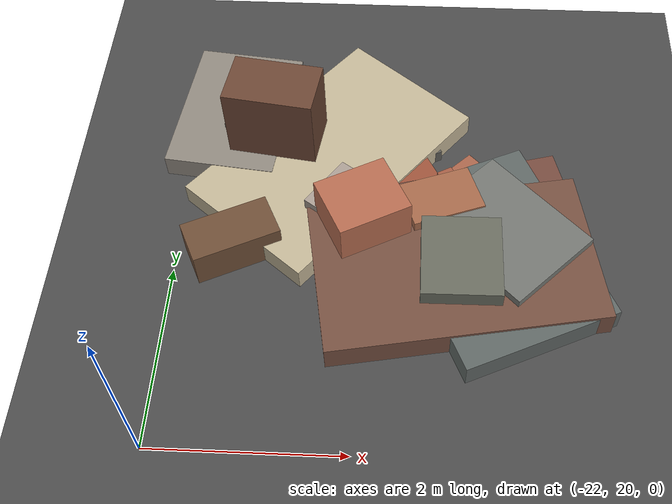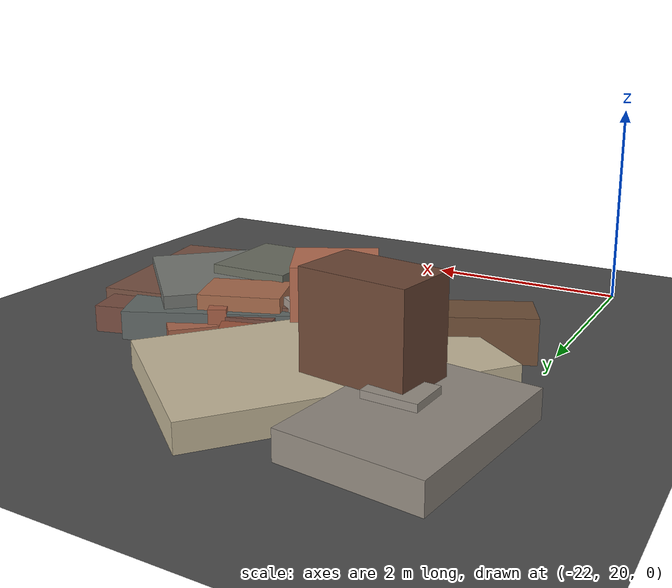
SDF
<sdf version="1.6">
 <world name="navitas_arena">
  <model name="ground_plane">
   <static>true</static>
   <link name="link">
    <collision name="collision">
     <geometry><plane><normal>0 0 1</normal><size>400 400</size></plane></geometry>
     <surface><friction><ode><mu>0.800</mu><mu2>0.800</mu2></ode></friction></surface>
    </collision>
    <visual name="visual">
     <cast_shadows>false</cast_shadows>
     <geometry><plane><normal>0 0 1</normal><size>400 400</size></plane></geometry>
     <material>
      <specular>0.04 0.04 0.04 1</specular>
      <script>
       <uri>file://media/materials/scripts/navitas_asphalt.material</uri>
       <name>Navitas/RealArenaAsphalt</name>
      </script>
     </material>
    </visual>
   </link>
  </model>
  <model name="deb_orta_62">
   <static>true</static>
   <pose>-21.143 23.354 0.000 0 0 0</pose>
   <link name="link">
    <collision name="col_0">
     <pose>0.542 0.536 0.078 0.000 0.000 2.634</pose>
     <geometry><box><size>1.936 0.295 0.155</size></box></geometry>
    </collision>
    <visual name="vis_0">
     <pose>0.542 0.536 0.078 0.000 0.000 2.634</pose>
     <geometry><box><size>1.936 0.295 0.155</size></box></geometry>
     <material>
      <ambient>0.62 0.35 0.23 1</ambient>
      <diffuse>0.67 0.38 0.25 1</diffuse>
      <specular>0.05 0.05 0.045 1</specular>
     </material>
    </visual>
    <collision name="col_1">
     <pose>-0.243 -1.070 0.216 0.000 0.000 2.020</pose>
     <geometry><box><size>0.486 0.949 0.431</size></box></geometry>
    </collision>
    <visual name="vis_1">
     <pose>-0.243 -1.070 0.216 0.000 0.000 2.020</pose>
     <geometry><box><size>0.486 0.949 0.431</size></box></geometry>
     <material>
      <ambient>0.41 0.29 0.21 1</ambient>
      <diffuse>0.44 0.31 0.22 1</diffuse>
      <specular>0.05 0.05 0.045 1</specular>
     </material>
    </visual>
    <collision name="col_2">
     <pose>0.719 0.157 0.128 0.000 0.000 0.895</pose>
     <geometry><box><size>2.849 1.729 0.255</size></box></geometry>
    </collision>
    <visual name="vis_2">
     <pose>0.719 0.157 0.128 0.000 0.000 0.895</pose>
     <geometry><box><size>2.849 1.729 0.255</size></box></geometry>
     <material>
      <ambient>0.71 0.67 0.56 1</ambient>
      <diffuse>0.77 0.72 0.60 1</diffuse>
      <specular>0.05 0.05 0.045 1</specular>
     </material>
    </visual>
    <collision name="col_3">
     <pose>-0.429 0.753 0.130 0.000 0.000 1.459</pose>
     <geometry><box><size>1.727 1.233 0.261</size></box></geometry>
    </collision>
    <visual name="vis_3">
     <pose>-0.429 0.753 0.130 0.000 0.000 1.459</pose>
     <geometry><box><size>1.727 1.233 0.261</size></box></geometry>
     <material>
      <ambient>0.53 0.50 0.46 1</ambient>
      <diffuse>0.57 0.54 0.50 1</diffuse>
      <specular>0.05 0.05 0.045 1</specular>
     </material>
    </visual>
   </link>
  </model>
  <model name="deb_orta_77">
   <static>true</static>
   <pose>-19.679 23.011 0.000 0 0 0</pose>
   <link name="link">
    <collision name="col_0">
     <pose>0.200 0.149 0.061 0.000 0.000 2.194</pose>
     <geometry><box><size>0.479 0.244 0.122</size></box></geometry>
    </collision>
    <visual name="vis_0">
     <pose>0.200 0.149 0.061 0.000 0.000 2.194</pose>
     <geometry><box><size>0.479 0.244 0.122</size></box></geometry>
     <material>
      <ambient>0.61 0.34 0.22 1</ambient>
      <diffuse>0.66 0.37 0.24 1</diffuse>
      <specular>0.05 0.05 0.045 1</specular>
     </material>
    </visual>
    <collision name="col_1">
     <pose>-0.087 -0.175 0.103 0.000 0.000 3.591</pose>
     <geometry><box><size>0.514 0.434 0.206</size></box></geometry>
    </collision>
    <visual name="vis_1">
     <pose>-0.087 -0.175 0.103 0.000 0.000 3.591</pose>
     <geometry><box><size>0.514 0.434 0.206</size></box></geometry>
     <material>
      <ambient>0.51 0.48 0.49 1</ambient>
      <diffuse>0.55 0.51 0.53 1</diffuse>
      <specular>0.05 0.05 0.045 1</specular>
     </material>
    </visual>
    <collision name="col_2">
     <pose>-0.435 -0.272 0.196 0.000 0.000 2.532</pose>
     <geometry><box><size>0.839 0.658 0.392</size></box></geometry>
    </collision>
    <visual name="vis_2">
     <pose>-0.435 -0.272 0.196 0.000 0.000 2.532</pose>
     <geometry><box><size>0.839 0.658 0.392</size></box></geometry>
     <material>
      <ambient>0.62 0.58 0.54 1</ambient>
      <diffuse>0.67 0.62 0.58 1</diffuse>
      <specular>0.05 0.05 0.045 1</specular>
     </material>
    </visual>
    <collision name="col_3">
     <pose>-0.300 -0.497 0.137 0.000 0.000 2.660</pose>
     <geometry><box><size>0.397 0.370 0.274</size></box></geometry>
    </collision>
    <visual name="vis_3">
     <pose>-0.300 -0.497 0.137 0.000 0.000 2.660</pose>
     <geometry><box><size>0.397 0.370 0.274</size></box></geometry>
     <material>
      <ambient>0.48 0.34 0.26 1</ambient>
      <diffuse>0.52 0.37 0.28 1</diffuse>
      <specular>0.05 0.05 0.045 1</specular>
     </material>
    </visual>
    <collision name="col_4">
     <pose>0.503 -0.203 0.213 0.000 0.000 3.493</pose>
     <geometry><box><size>0.797 0.549 0.427</size></box></geometry>
    </collision>
    <visual name="vis_4">
     <pose>0.503 -0.203 0.213 0.000 0.000 3.493</pose>
     <geometry><box><size>0.797 0.549 0.427</size></box></geometry>
     <material>
      <ambient>0.61 0.39 0.28 1</ambient>
      <diffuse>0.66 0.42 0.30 1</diffuse>
      <specular>0.05 0.05 0.045 1</specular>
     </material>
    </visual>
    <collision name="col_5">
     <pose>-0.327 -0.491 0.388 0.000 0.000 3.621</pose>
     <geometry><box><size>0.801 0.700 0.775</size></box></geometry>
    </collision>
    <visual name="vis_5">
     <pose>-0.327 -0.491 0.388 0.000 0.000 3.621</pose>
     <geometry><box><size>0.801 0.700 0.775</size></box></geometry>
     <material>
      <ambient>0.66 0.40 0.29 1</ambient>
      <diffuse>0.72 0.43 0.32 1</diffuse>
      <specular>0.05 0.05 0.045 1</specular>
     </material>
    </visual>
    <collision name="col_6">
     <pose>-0.064 0.104 0.111 0.000 0.000 2.069</pose>
     <geometry><box><size>2.182 1.077 0.222</size></box></geometry>
    </collision>
    <visual name="vis_6">
     <pose>-0.064 0.104 0.111 0.000 0.000 2.069</pose>
     <geometry><box><size>2.182 1.077 0.222</size></box></geometry>
     <material>
      <ambient>0.57 0.30 0.21 1</ambient>
      <diffuse>0.62 0.33 0.23 1</diffuse>
      <specular>0.05 0.05 0.045 1</specular>
     </material>
    </visual>
   </link>
  </model>
  <model name="deb_orta_131">
   <static>true</static>
   <pose>-20.266 23.404 0.000 0 0 0</pose>
   <link name="link">
    <collision name="col_0">
     <pose>0.237 1.081 0.127 0.000 0.000 2.895</pose>
     <geometry><box><size>0.280 0.215 0.255</size></box></geometry>
    </collision>
    <visual name="vis_0">
     <pose>0.237 1.081 0.127 0.000 0.000 2.895</pose>
     <geometry><box><size>0.280 0.215 0.255</size></box></geometry>
     <material>
      <ambient>0.58 0.30 0.22 1</ambient>
      <diffuse>0.62 0.33 0.24 1</diffuse>
      <specular>0.05 0.05 0.045 1</specular>
     </material>
    </visual>
    <collision name="col_1">
     <pose>-0.765 0.315 0.564 0.000 0.000 1.432</pose>
     <geometry><box><size>0.614 0.984 1.128</size></box></geometry>
    </collision>
    <visual name="vis_1">
     <pose>-0.765 0.315 0.564 0.000 0.000 1.432</pose>
     <geometry><box><size>0.614 0.984 1.128</size></box></geometry>
     <material>
      <ambient>0.40 0.26 0.20 1</ambient>
      <diffuse>0.43 0.28 0.21 1</diffuse>
      <specular>0.05 0.05 0.045 1</specular>
     </material>
    </visual>
    <collision name="col_2">
     <pose>0.692 0.694 0.073 0.000 0.000 2.051</pose>
     <geometry><box><size>1.179 0.304 0.146</size></box></geometry>
    </collision>
    <visual name="vis_2">
     <pose>0.692 0.694 0.073 0.000 0.000 2.051</pose>
     <geometry><box><size>1.179 0.304 0.146</size></box></geometry>
     <material>
      <ambient>0.34 0.33 0.31 1</ambient>
      <diffuse>0.37 0.36 0.34 1</diffuse>
      <specular>0.05 0.05 0.045 1</specular>
     </material>
    </visual>
    <collision name="col_3">
     <pose>-1.145 0.583 0.164 0.000 0.000 1.523</pose>
     <geometry><box><size>0.386 0.479 0.328</size></box></geometry>
    </collision>
    <visual name="vis_3">
     <pose>-1.145 0.583 0.164 0.000 0.000 1.523</pose>
     <geometry><box><size>0.386 0.479 0.328</size></box></geometry>
     <material>
      <ambient>0.54 0.51 0.48 1</ambient>
      <diffuse>0.59 0.56 0.52 1</diffuse>
      <specular>0.05 0.05 0.045 1</specular>
     </material>
    </visual>
   </link>
  </model>
  <model name="deb_orta_254">
   <static>true</static>
   <pose>-19.026 22.398 0.000 0 0 0</pose>
   <link name="link">
    <collision name="col_0">
     <pose>0.418 0.234 0.129 0.000 0.000 3.406</pose>
     <geometry><box><size>1.792 1.406 0.259</size></box></geometry>
    </collision>
    <visual name="vis_0">
     <pose>0.418 0.234 0.129 0.000 0.000 3.406</pose>
     <geometry><box><size>1.792 1.406 0.259</size></box></geometry>
     <material>
      <ambient>0.43 0.28 0.23 1</ambient>
      <diffuse>0.47 0.30 0.25 1</diffuse>
      <specular>0.05 0.05 0.045 1</specular>
     </material>
    </visual>
    <collision name="col_1">
     <pose>0.225 0.213 0.165 0.000 0.000 2.079</pose>
     <geometry><box><size>1.424 0.175 0.330</size></box></geometry>
    </collision>
    <visual name="vis_1">
     <pose>0.225 0.213 0.165 0.000 0.000 2.079</pose>
     <geometry><box><size>1.424 0.175 0.330</size></box></geometry>
     <material>
      <ambient>0.60 0.34 0.25 1</ambient>
      <diffuse>0.65 0.37 0.27 1</diffuse>
      <specular>0.05 0.05 0.045 1</specular>
     </material>
    </visual>
    <collision name="col_2">
     <pose>-0.131 0.399 0.091 0.000 0.000 0.777</pose>
     <geometry><box><size>1.531 0.696 0.182</size></box></geometry>
    </collision>
    <visual name="vis_2">
     <pose>-0.131 0.399 0.091 0.000 0.000 0.777</pose>
     <geometry><box><size>1.531 0.696 0.182</size></box></geometry>
     <material>
      <ambient>0.62 0.37 0.27 1</ambient>
      <diffuse>0.67 0.40 0.30 1</diffuse>
      <specular>0.05 0.05 0.045 1</specular>
     </material>
    </visual>
    <collision name="col_3">
     <pose>0.523 0.036 0.202 0.000 0.000 2.353</pose>
     <geometry><box><size>1.455 1.127 0.404</size></box></geometry>
    </collision>
    <visual name="vis_3">
     <pose>0.523 0.036 0.202 0.000 0.000 2.353</pose>
     <geometry><box><size>1.455 1.127 0.404</size></box></geometry>
     <material>
      <ambient>0.42 0.44 0.41 1</ambient>
      <diffuse>0.46 0.47 0.45 1</diffuse>
      <specular>0.05 0.05 0.045 1</specular>
     </material>
    </visual>
    <collision name="col_4">
     <pose>0.007 -0.340 0.155 0.000 0.000 3.320</pose>
     <geometry><box><size>2.935 1.764 0.310</size></box></geometry>
    </collision>
    <visual name="vis_4">
     <pose>0.007 -0.340 0.155 0.000 0.000 3.320</pose>
     <geometry><box><size>2.935 1.764 0.310</size></box></geometry>
     <material>
      <ambient>0.43 0.30 0.24 1</ambient>
      <diffuse>0.47 0.32 0.26 1</diffuse>
      <specular>0.05 0.05 0.045 1</specular>
     </material>
    </visual>
    <collision name="col_5">
     <pose>0.060 -0.393 0.248 0.000 0.000 3.148</pose>
     <geometry><box><size>0.835 0.955 0.496</size></box></geometry>
    </collision>
    <visual name="vis_5">
     <pose>0.060 -0.393 0.248 0.000 0.000 3.148</pose>
     <geometry><box><size>0.835 0.955 0.496</size></box></geometry>
     <material>
      <ambient>0.38 0.40 0.35 1</ambient>
      <diffuse>0.42 0.43 0.38 1</diffuse>
      <specular>0.05 0.05 0.045 1</specular>
     </material>
    </visual>
    <collision name="col_6">
     <pose>0.420 -0.196 0.139 0.000 0.000 2.001</pose>
     <geometry><box><size>2.280 1.715 0.278</size></box></geometry>
    </collision>
    <visual name="vis_6">
     <pose>0.420 -0.196 0.139 0.000 0.000 2.001</pose>
     <geometry><box><size>2.280 1.715 0.278</size></box></geometry>
     <material>
      <ambient>0.36 0.38 0.37 1</ambient>
      <diffuse>0.38 0.41 0.40 1</diffuse>
      <specular>0.05 0.05 0.045 1</specular>
     </material>
    </visual>
   </link>
  </model>
 </world>
</sdf>
